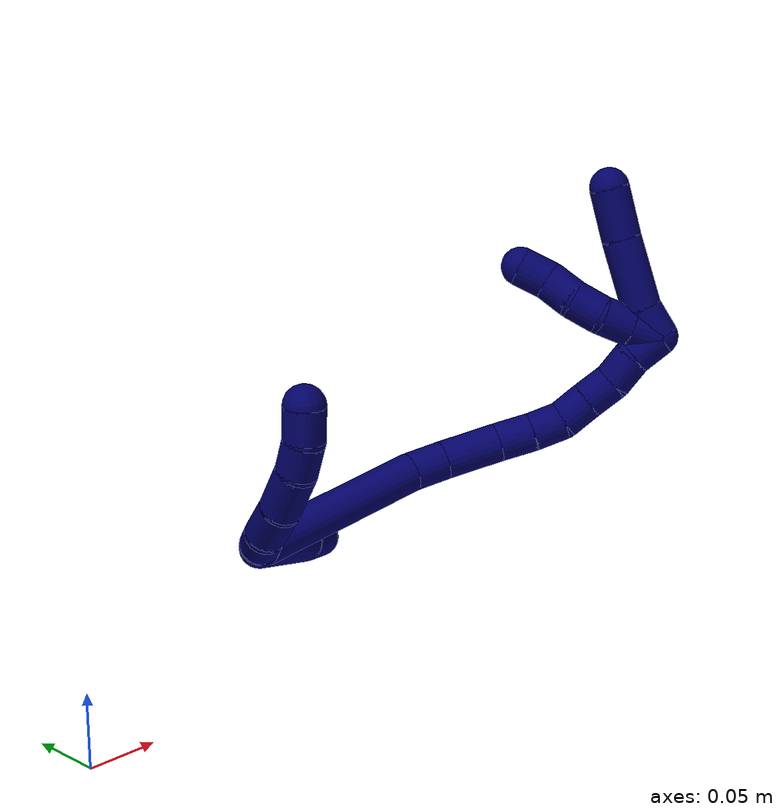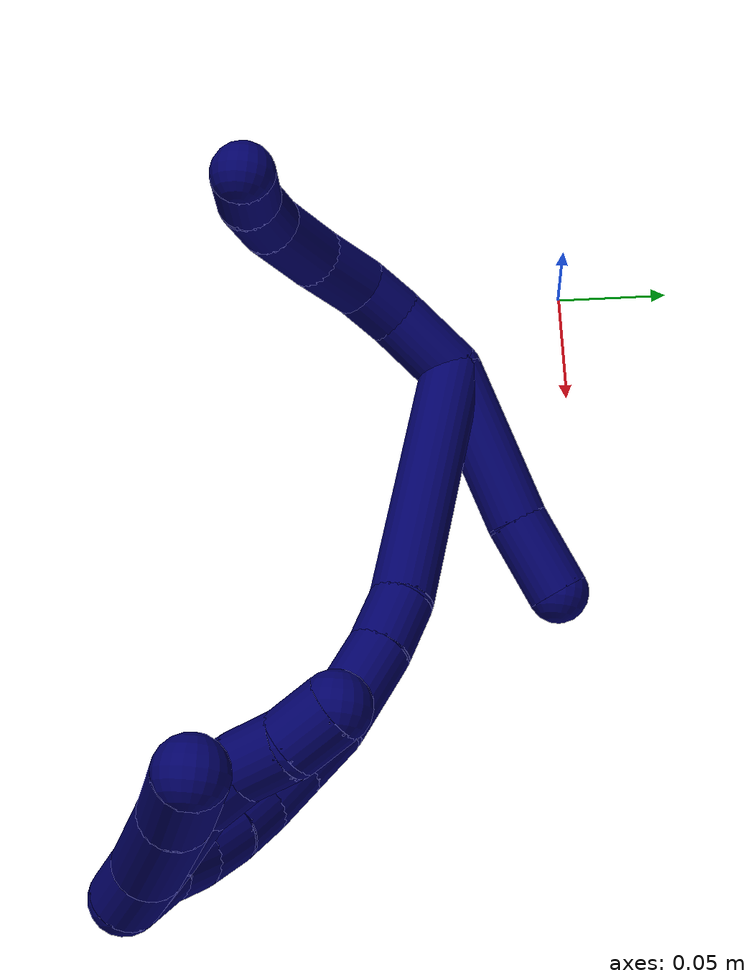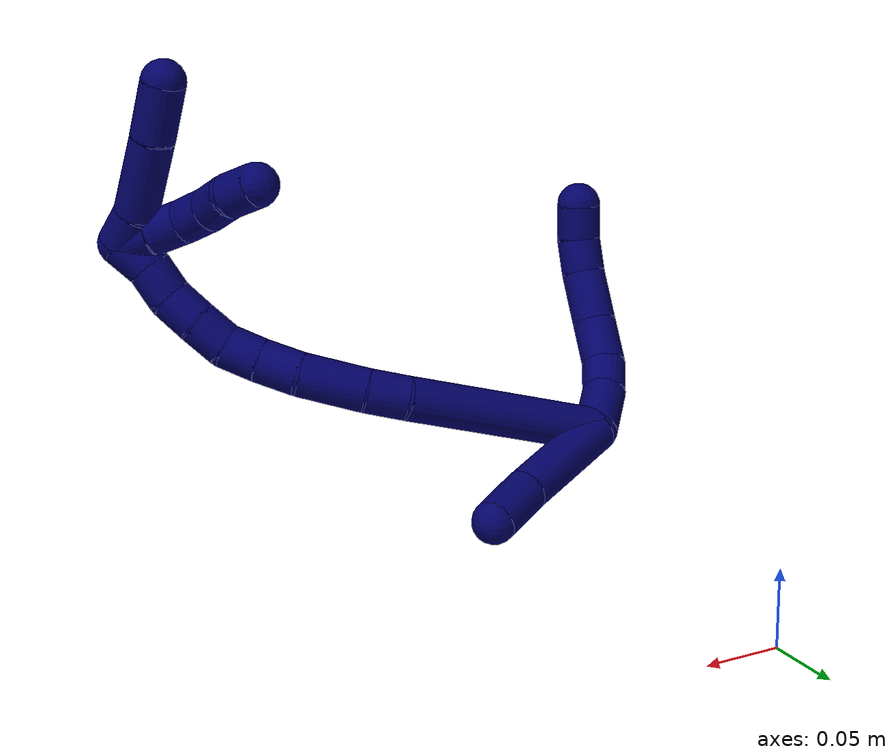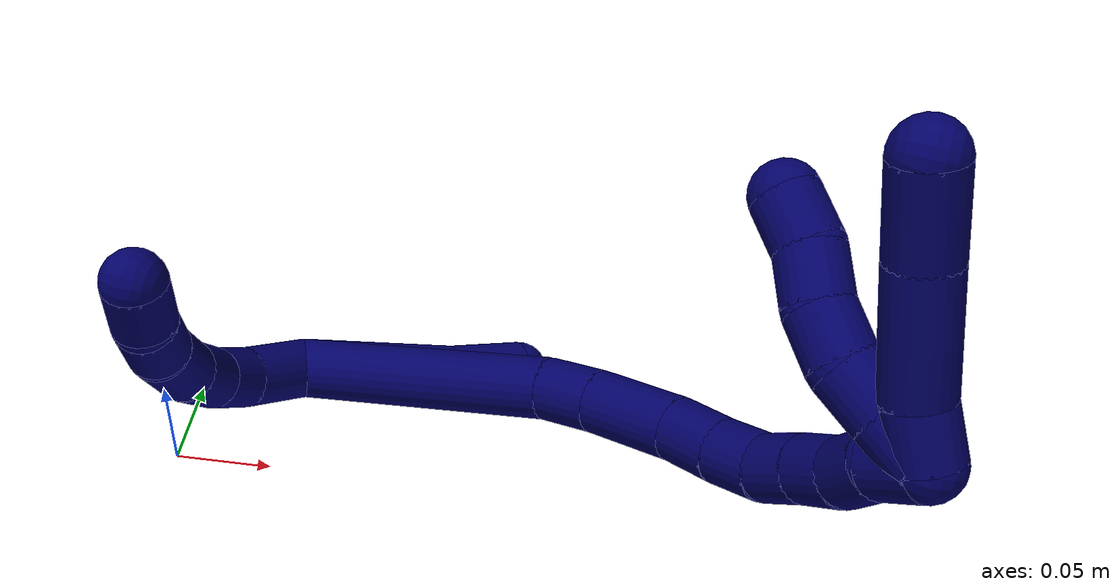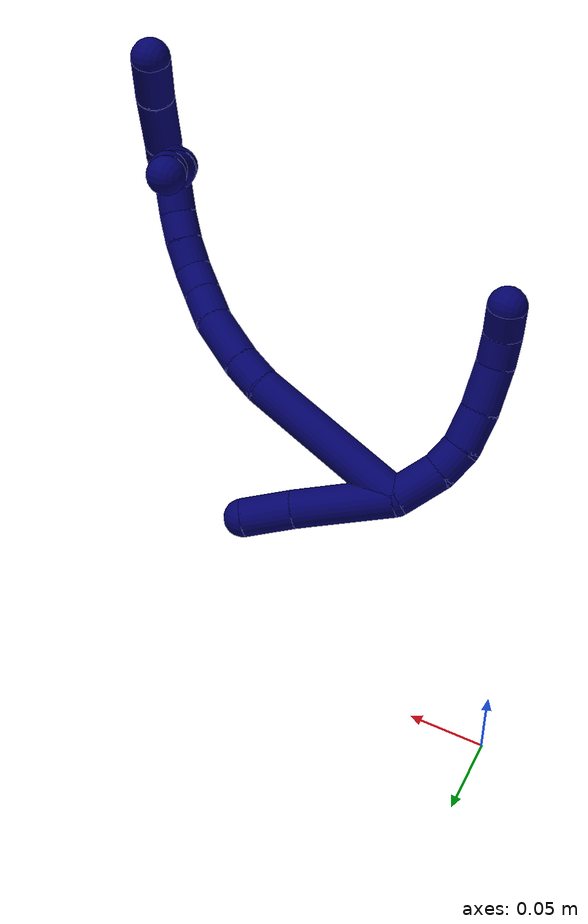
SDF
<sdf version="1.7">
 <world name="default">
  <model name="7">
   <static>0</static>
   <link name="7">
    <collision name="collision-cylinder-e_1_2_8">
     <pose>-0.013364 -0.001282 -0.00857 2.99313 -0.995551 -2.86958</pose>
     <geometry><cylinder><radius>0.0125</radius><length>0.031855</length></cylinder></geometry>
     <surface>
      <friction><ode><mu>1.16</mu><mu2>1.16</mu2><slip1>0</slip1><slip2>0</slip2></ode></friction>
      <contact><ode><kp>1e+06</kp><kd>1</kd><max_vel>0</max_vel><min_depth>0.001</min_depth></ode></contact>
     </surface>
    </collision>
    <visual name="visual-cylinder-e_1_2_8">
     <pose>-0.013364 -0.001282 -0.00857 2.99313 -0.995551 -2.86958</pose>
     <geometry><cylinder><radius>0.0125</radius><length>0.031855</length></cylinder></geometry>
     <material><ambient>0.003922 0 0.403922 1</ambient></material>
    </visual>
    <collision name="collision-cylinder-e_2_8_9">
     <pose>-0.036081 -0.001417 -0.020838 -2.84091 -1.17829 2.69579</pose>
     <geometry><cylinder><radius>0.0125</radius><length>0.020245</length></cylinder></geometry>
     <surface>
      <friction><ode><mu>1.16</mu><mu2>1.16</mu2><slip1>0</slip1><slip2>0</slip2></ode></friction>
      <contact><ode><kp>1e+06</kp><kd>1</kd><max_vel>0</max_vel><min_depth>0.001</min_depth></ode></contact>
     </surface>
    </collision>
    <visual name="visual-cylinder-e_2_8_9">
     <pose>-0.036081 -0.001417 -0.020838 -2.84091 -1.17829 2.69579</pose>
     <geometry><cylinder><radius>0.0125</radius><length>0.020245</length></cylinder></geometry>
     <material><ambient>0.003922 0 0.403922 1</ambient></material>
    </visual>
    <collision name="collision-cylinder-e_3_9_10">
     <pose>-0.057927 0.003833 -0.02611 -1.93708 -1.23258 1.6007</pose>
     <geometry><cylinder><radius>0.0125</radius><length>0.026487</length></cylinder></geometry>
     <surface>
      <friction><ode><mu>1.16</mu><mu2>1.16</mu2><slip1>0</slip1><slip2>0</slip2></ode></friction>
      <contact><ode><kp>1e+06</kp><kd>1</kd><max_vel>0</max_vel><min_depth>0.001</min_depth></ode></contact>
     </surface>
    </collision>
    <visual name="visual-cylinder-e_3_9_10">
     <pose>-0.057927 0.003833 -0.02611 -1.93708 -1.23258 1.6007</pose>
     <geometry><cylinder><radius>0.0125</radius><length>0.026487</length></cylinder></geometry>
     <material><ambient>0.003922 0 0.403922 1</ambient></material>
    </visual>
    <collision name="collision-cylinder-e_4_10_11">
     <pose>-0.083893 0.015025 -0.028551 -1.69255 -1.0833 1.19406</pose>
     <geometry><cylinder><radius>0.0125</radius><length>0.030498</length></cylinder></geometry>
     <surface>
      <friction><ode><mu>1.16</mu><mu2>1.16</mu2><slip1>0</slip1><slip2>0</slip2></ode></friction>
      <contact><ode><kp>1e+06</kp><kd>1</kd><max_vel>0</max_vel><min_depth>0.001</min_depth></ode></contact>
     </surface>
    </collision>
    <visual name="visual-cylinder-e_4_10_11">
     <pose>-0.083893 0.015025 -0.028551 -1.69255 -1.0833 1.19406</pose>
     <geometry><cylinder><radius>0.0125</radius><length>0.030498</length></cylinder></geometry>
     <material><ambient>0.003922 0 0.403922 1</ambient></material>
    </visual>
    <collision name="collision-cylinder-e_5_11_12">
     <pose>-0.105181 0.028759 -0.029921 -1.64629 -0.864899 0.923805</pose>
     <geometry><cylinder><radius>0.0125</radius><length>0.020541</length></cylinder></geometry>
     <surface>
      <friction><ode><mu>1.16</mu><mu2>1.16</mu2><slip1>0</slip1><slip2>0</slip2></ode></friction>
      <contact><ode><kp>1e+06</kp><kd>1</kd><max_vel>0</max_vel><min_depth>0.001</min_depth></ode></contact>
     </surface>
    </collision>
    <visual name="visual-cylinder-e_5_11_12">
     <pose>-0.105181 0.028759 -0.029921 -1.64629 -0.864899 0.923805</pose>
     <geometry><cylinder><radius>0.0125</radius><length>0.020541</length></cylinder></geometry>
     <material><ambient>0.003922 0 0.403922 1</ambient></material>
    </visual>
    <collision name="collision-cylinder-e_6_12_6">
     <pose>-0.118675 0.043805 -0.031399 -1.68634 -0.591112 0.658804</pose>
     <geometry><cylinder><radius>0.0125</radius><length>0.020374</length></cylinder></geometry>
     <surface>
      <friction><ode><mu>1.16</mu><mu2>1.16</mu2><slip1>0</slip1><slip2>0</slip2></ode></friction>
      <contact><ode><kp>1e+06</kp><kd>1</kd><max_vel>0</max_vel><min_depth>0.001</min_depth></ode></contact>
     </surface>
    </collision>
    <visual name="visual-cylinder-e_6_12_6">
     <pose>-0.118675 0.043805 -0.031399 -1.68634 -0.591112 0.658804</pose>
     <geometry><cylinder><radius>0.0125</radius><length>0.020374</length></cylinder></geometry>
     <material><ambient>0.003922 0 0.403922 1</ambient></material>
    </visual>
    <collision name="collision-cylinder-e_1_2_13">
     <pose>0.016785 0.00245 0.028683 -0.085215 0.527878 -0.023042</pose>
     <geometry><cylinder><radius>0.0125</radius><length>0.066647</length></cylinder></geometry>
     <surface>
      <friction><ode><mu>1.16</mu><mu2>1.16</mu2><slip1>0</slip1><slip2>0</slip2></ode></friction>
      <contact><ode><kp>1e+06</kp><kd>1</kd><max_vel>0</max_vel><min_depth>0.001</min_depth></ode></contact>
     </surface>
    </collision>
    <visual name="visual-cylinder-e_1_2_13">
     <pose>0.016785 0.00245 0.028683 -0.085215 0.527878 -0.023042</pose>
     <geometry><cylinder><radius>0.0125</radius><length>0.066647</length></cylinder></geometry>
     <material><ambient>0.003922 0 0.403922 1</ambient></material>
    </visual>
    <collision name="collision-cylinder-e_2_13_5">
     <pose>0.043029 0.007386 0.070874 -0.182001 0.603107 -0.056751</pose>
     <geometry><cylinder><radius>0.0125</radius><length>0.033353</length></cylinder></geometry>
     <surface>
      <friction><ode><mu>1.16</mu><mu2>1.16</mu2><slip1>0</slip1><slip2>0</slip2></ode></friction>
      <contact><ode><kp>1e+06</kp><kd>1</kd><max_vel>0</max_vel><min_depth>0.001</min_depth></ode></contact>
     </surface>
    </collision>
    <visual name="visual-cylinder-e_2_13_5">
     <pose>0.043029 0.007386 0.070874 -0.182001 0.603107 -0.056751</pose>
     <geometry><cylinder><radius>0.0125</radius><length>0.033353</length></cylinder></geometry>
     <material><ambient>0.003922 0 0.403922 1</ambient></material>
    </visual>
    <collision name="collision-cylinder-e_1_2_14">
     <pose>-0.01426 0.013689 0.053598 -0.25006 -0.252286 0.031875</pose>
     <geometry><cylinder><radius>0.0125</radius><length>0.114254</length></cylinder></geometry>
     <surface>
      <friction><ode><mu>1.16</mu><mu2>1.16</mu2><slip1>0</slip1><slip2>0</slip2></ode></friction>
      <contact><ode><kp>1e+06</kp><kd>1</kd><max_vel>0</max_vel><min_depth>0.001</min_depth></ode></contact>
     </surface>
    </collision>
    <visual name="visual-cylinder-e_1_2_14">
     <pose>-0.01426 0.013689 0.053598 -0.25006 -0.252286 0.031875</pose>
     <geometry><cylinder><radius>0.0125</radius><length>0.114254</length></cylinder></geometry>
     <material><ambient>0.003922 0 0.403922 1</ambient></material>
    </visual>
    <collision name="collision-cylinder-e_2_14_15">
     <pose>-0.033005 0.02873 0.117801 -0.126799 -0.397255 0.025555</pose>
     <geometry><cylinder><radius>0.0125</radius><length>0.023187</length></cylinder></geometry>
     <surface>
      <friction><ode><mu>1.16</mu><mu2>1.16</mu2><slip1>0</slip1><slip2>0</slip2></ode></friction>
      <contact><ode><kp>1e+06</kp><kd>1</kd><max_vel>0</max_vel><min_depth>0.001</min_depth></ode></contact>
     </surface>
    </collision>
    <visual name="visual-cylinder-e_2_14_15">
     <pose>-0.033005 0.02873 0.117801 -0.126799 -0.397255 0.025555</pose>
     <geometry><cylinder><radius>0.0125</radius><length>0.023187</length></cylinder></geometry>
     <material><ambient>0.003922 0 0.403922 1</ambient></material>
    </visual>
    <collision name="collision-cylinder-e_3_15_16">
     <pose>-0.046622 0.031459 0.14474 -0.084089 -0.508215 0.021852</pose>
     <geometry><cylinder><radius>0.0125</radius><length>0.037528</length></cylinder></geometry>
     <surface>
      <friction><ode><mu>1.16</mu><mu2>1.16</mu2><slip1>0</slip1><slip2>0</slip2></ode></friction>
      <contact><ode><kp>1e+06</kp><kd>1</kd><max_vel>0</max_vel><min_depth>0.001</min_depth></ode></contact>
     </surface>
    </collision>
    <visual name="visual-cylinder-e_3_15_16">
     <pose>-0.046622 0.031459 0.14474 -0.084089 -0.508215 0.021852</pose>
     <geometry><cylinder><radius>0.0125</radius><length>0.037528</length></cylinder></geometry>
     <material><ambient>0.003922 0 0.403922 1</ambient></material>
    </visual>
    <collision name="collision-cylinder-e_4_16_17">
     <pose>-0.063063 0.033075 0.170057 -0.02664 -0.682972 0.009468</pose>
     <geometry><cylinder><radius>0.0125</radius><length>0.023168</length></cylinder></geometry>
     <surface>
      <friction><ode><mu>1.16</mu><mu2>1.16</mu2><slip1>0</slip1><slip2>0</slip2></ode></friction>
      <contact><ode><kp>1e+06</kp><kd>1</kd><max_vel>0</max_vel><min_depth>0.001</min_depth></ode></contact>
     </surface>
    </collision>
    <visual name="visual-cylinder-e_4_16_17">
     <pose>-0.063063 0.033075 0.170057 -0.02664 -0.682972 0.009468</pose>
     <geometry><cylinder><radius>0.0125</radius><length>0.023168</length></cylinder></geometry>
     <material><ambient>0.003922 0 0.403922 1</ambient></material>
    </visual>
    <collision name="collision-cylinder-e_5_17_18">
     <pose>-0.077026 0.034304 0.186907 -0.125078 -0.698065 0.045572</pose>
     <geometry><cylinder><radius>0.0125</radius><length>0.020701</length></cylinder></geometry>
     <surface>
      <friction><ode><mu>1.16</mu><mu2>1.16</mu2><slip1>0</slip1><slip2>0</slip2></ode></friction>
      <contact><ode><kp>1e+06</kp><kd>1</kd><max_vel>0</max_vel><min_depth>0.001</min_depth></ode></contact>
     </surface>
    </collision>
    <visual name="visual-cylinder-e_5_17_18">
     <pose>-0.077026 0.034304 0.186907 -0.125078 -0.698065 0.045572</pose>
     <geometry><cylinder><radius>0.0125</radius><length>0.020701</length></cylinder></geometry>
     <material><ambient>0.003922 0 0.403922 1</ambient></material>
    </visual>
    <collision name="collision-cylinder-e_6_18_19">
     <pose>-0.09076 0.039128 0.200946 -0.556064 -0.772555 0.231136</pose>
     <geometry><cylinder><radius>0.0125</radius><length>0.020291</length></cylinder></geometry>
     <surface>
      <friction><ode><mu>1.16</mu><mu2>1.16</mu2><slip1>0</slip1><slip2>0</slip2></ode></friction>
      <contact><ode><kp>1e+06</kp><kd>1</kd><max_vel>0</max_vel><min_depth>0.001</min_depth></ode></contact>
     </surface>
    </collision>
    <visual name="visual-cylinder-e_6_18_19">
     <pose>-0.09076 0.039128 0.200946 -0.556064 -0.772555 0.231136</pose>
     <geometry><cylinder><radius>0.0125</radius><length>0.020291</length></cylinder></geometry>
     <material><ambient>0.003922 0 0.403922 1</ambient></material>
    </visual>
    <collision name="collision-cylinder-e_7_19_20">
     <pose>-0.105529 0.046258 0.212716 -0.531866 -0.869164 0.251535</pose>
     <geometry><cylinder><radius>0.0125</radius><length>0.02013</length></cylinder></geometry>
     <surface>
      <friction><ode><mu>1.16</mu><mu2>1.16</mu2><slip1>0</slip1><slip2>0</slip2></ode></friction>
      <contact><ode><kp>1e+06</kp><kd>1</kd><max_vel>0</max_vel><min_depth>0.001</min_depth></ode></contact>
     </surface>
    </collision>
    <visual name="visual-cylinder-e_7_19_20">
     <pose>-0.105529 0.046258 0.212716 -0.531866 -0.869164 0.251535</pose>
     <geometry><cylinder><radius>0.0125</radius><length>0.02013</length></cylinder></geometry>
     <material><ambient>0.003922 0 0.403922 1</ambient></material>
    </visual>
    <collision name="collision-cylinder-e_8_20_21">
     <pose>-0.121021 0.054788 0.222196 -0.932854 -0.875064 0.462594</pose>
     <geometry><cylinder><radius>0.0125</radius><length>0.020335</length></cylinder></geometry>
     <surface>
      <friction><ode><mu>1.16</mu><mu2>1.16</mu2><slip1>0</slip1><slip2>0</slip2></ode></friction>
      <contact><ode><kp>1e+06</kp><kd>1</kd><max_vel>0</max_vel><min_depth>0.001</min_depth></ode></contact>
     </surface>
    </collision>
    <visual name="visual-cylinder-e_8_20_21">
     <pose>-0.121021 0.054788 0.222196 -0.932854 -0.875064 0.462594</pose>
     <geometry><cylinder><radius>0.0125</radius><length>0.020335</length></cylinder></geometry>
     <material><ambient>0.003922 0 0.403922 1</ambient></material>
    </visual>
    <collision name="collision-cylinder-e_9_21_1">
     <pose>-0.136096 0.063676 0.232234 -0.535484 -0.793104 0.228739</pose>
     <geometry><cylinder><radius>0.0125</radius><length>0.020406</length></cylinder></geometry>
     <surface>
      <friction><ode><mu>1.16</mu><mu2>1.16</mu2><slip1>0</slip1><slip2>0</slip2></ode></friction>
      <contact><ode><kp>1e+06</kp><kd>1</kd><max_vel>0</max_vel><min_depth>0.001</min_depth></ode></contact>
     </surface>
    </collision>
    <visual name="visual-cylinder-e_9_21_1">
     <pose>-0.136096 0.063676 0.232234 -0.535484 -0.793104 0.228739</pose>
     <geometry><cylinder><radius>0.0125</radius><length>0.020406</length></cylinder></geometry>
     <material><ambient>0.003922 0 0.403922 1</ambient></material>
    </visual>
    <collision name="collision-cylinder-e_1_1_22">
     <pose>-0.140012 0.072471 0.230497 -2.5642 0.342006 -1.05336</pose>
     <geometry><cylinder><radius>0.0125</radius><length>0.02</length></cylinder></geometry>
     <surface>
      <friction><ode><mu>1.16</mu><mu2>1.16</mu2><slip1>0</slip1><slip2>0</slip2></ode></friction>
      <contact><ode><kp>1e+06</kp><kd>1</kd><max_vel>0</max_vel><min_depth>0.001</min_depth></ode></contact>
     </surface>
    </collision>
    <visual name="visual-cylinder-e_1_1_22">
     <pose>-0.140012 0.072471 0.230497 -2.5642 0.342006 -1.05336</pose>
     <geometry><cylinder><radius>0.0125</radius><length>0.02</length></cylinder></geometry>
     <material><ambient>0.003922 0 0.403922 1</ambient></material>
    </visual>
    <collision name="collision-cylinder-e_2_22_23">
     <pose>-0.134015 0.083006 0.214607 -2.54822 0.267439 -0.829068</pose>
     <geometry><cylinder><radius>0.0125</radius><length>0.02</length></cylinder></geometry>
     <surface>
      <friction><ode><mu>1.16</mu><mu2>1.16</mu2><slip1>0</slip1><slip2>0</slip2></ode></friction>
      <contact><ode><kp>1e+06</kp><kd>1</kd><max_vel>0</max_vel><min_depth>0.001</min_depth></ode></contact>
     </surface>
    </collision>
    <visual name="visual-cylinder-e_2_22_23">
     <pose>-0.134015 0.083006 0.214607 -2.54822 0.267439 -0.829068</pose>
     <geometry><cylinder><radius>0.0125</radius><length>0.02</length></cylinder></geometry>
     <material><ambient>0.003922 0 0.403922 1</ambient></material>
    </visual>
    <collision name="collision-cylinder-e_3_23_24">
     <pose>-0.127417 0.095543 0.20084 -2.25033 0.40673 -0.815066</pose>
     <geometry><cylinder><radius>0.0125</radius><length>0.02</length></cylinder></geometry>
     <surface>
      <friction><ode><mu>1.16</mu><mu2>1.16</mu2><slip1>0</slip1><slip2>0</slip2></ode></friction>
      <contact><ode><kp>1e+06</kp><kd>1</kd><max_vel>0</max_vel><min_depth>0.001</min_depth></ode></contact>
     </surface>
    </collision>
    <visual name="visual-cylinder-e_3_23_24">
     <pose>-0.127417 0.095543 0.20084 -2.25033 0.40673 -0.815066</pose>
     <geometry><cylinder><radius>0.0125</radius><length>0.02</length></cylinder></geometry>
     <material><ambient>0.003922 0 0.403922 1</ambient></material>
    </visual>
    <collision name="collision-cylinder-e_4_24_25">
     <pose>-0.119139 0.110937 0.191426 -1.98653 0.446891 -0.671061</pose>
     <geometry><cylinder><radius>0.0125</radius><length>0.02</length></cylinder></geometry>
     <surface>
      <friction><ode><mu>1.16</mu><mu2>1.16</mu2><slip1>0</slip1><slip2>0</slip2></ode></friction>
      <contact><ode><kp>1e+06</kp><kd>1</kd><max_vel>0</max_vel><min_depth>0.001</min_depth></ode></contact>
     </surface>
    </collision>
    <visual name="visual-cylinder-e_4_24_25">
     <pose>-0.119139 0.110937 0.191426 -1.98653 0.446891 -0.671061</pose>
     <geometry><cylinder><radius>0.0125</radius><length>0.02</length></cylinder></geometry>
     <material><ambient>0.003922 0 0.403922 1</ambient></material>
    </visual>
    <collision name="collision-cylinder-e_5_25_4">
     <pose>-0.110525 0.126028 0.181888 -2.28214 0.44367 -0.914691</pose>
     <geometry><cylinder><radius>0.0125</radius><length>0.02</length></cylinder></geometry>
     <surface>
      <friction><ode><mu>1.16</mu><mu2>1.16</mu2><slip1>0</slip1><slip2>0</slip2></ode></friction>
      <contact><ode><kp>1e+06</kp><kd>1</kd><max_vel>0</max_vel><min_depth>0.001</min_depth></ode></contact>
     </surface>
    </collision>
    <visual name="visual-cylinder-e_5_25_4">
     <pose>-0.110525 0.126028 0.181888 -2.28214 0.44367 -0.914691</pose>
     <geometry><cylinder><radius>0.0125</radius><length>0.02</length></cylinder></geometry>
     <material><ambient>0.003922 0 0.403922 1</ambient></material>
    </visual>
    <collision name="collision-cylinder-e_1_1_26">
     <pose>-0.144094 0.076948 0.23393 -2.00497 -0.068621 0.107396</pose>
     <geometry><cylinder><radius>0.0125</radius><length>0.021257</length></cylinder></geometry>
     <surface>
      <friction><ode><mu>1.16</mu><mu2>1.16</mu2><slip1>0</slip1><slip2>0</slip2></ode></friction>
      <contact><ode><kp>1e+06</kp><kd>1</kd><max_vel>0</max_vel><min_depth>0.001</min_depth></ode></contact>
     </surface>
    </collision>
    <visual name="visual-cylinder-e_1_1_26">
     <pose>-0.144094 0.076948 0.23393 -2.00497 -0.068621 0.107396</pose>
     <geometry><cylinder><radius>0.0125</radius><length>0.021257</length></cylinder></geometry>
     <material><ambient>0.003922 0 0.403922 1</ambient></material>
    </visual>
    <collision name="collision-cylinder-e_2_26_27">
     <pose>-0.150509 0.108083 0.223804 -1.82829 -0.250219 0.323496</pose>
     <geometry><cylinder><radius>0.0125</radius><length>0.045928</length></cylinder></geometry>
     <surface>
      <friction><ode><mu>1.16</mu><mu2>1.16</mu2><slip1>0</slip1><slip2>0</slip2></ode></friction>
      <contact><ode><kp>1e+06</kp><kd>1</kd><max_vel>0</max_vel><min_depth>0.001</min_depth></ode></contact>
     </surface>
    </collision>
    <visual name="visual-cylinder-e_2_26_27">
     <pose>-0.150509 0.108083 0.223804 -1.82829 -0.250219 0.323496</pose>
     <geometry><cylinder><radius>0.0125</radius><length>0.045928</length></cylinder></geometry>
     <material><ambient>0.003922 0 0.403922 1</ambient></material>
    </visual>
    <collision name="collision-cylinder-e_3_27_3">
     <pose>-0.161185 0.144716 0.214166 -1.82773 -0.308994 0.398526</pose>
     <geometry><cylinder><radius>0.0125</radius><length>0.032816</length></cylinder></geometry>
     <surface>
      <friction><ode><mu>1.16</mu><mu2>1.16</mu2><slip1>0</slip1><slip2>0</slip2></ode></friction>
      <contact><ode><kp>1e+06</kp><kd>1</kd><max_vel>0</max_vel><min_depth>0.001</min_depth></ode></contact>
     </surface>
    </collision>
    <visual name="visual-cylinder-e_3_27_3">
     <pose>-0.161185 0.144716 0.214166 -1.82773 -0.308994 0.398526</pose>
     <geometry><cylinder><radius>0.0125</radius><length>0.032816</length></cylinder></geometry>
     <material><ambient>0.003922 0 0.403922 1</ambient></material>
    </visual>
    <collision name="collision-sphere-3">
     <pose>-0.166175 0.159833 0.210194 0 -0 0</pose>
     <geometry><sphere><radius>0.0125</radius></sphere></geometry>
     <surface>
      <friction><ode><mu>1.16</mu><mu2>1.16</mu2><slip1>0</slip1><slip2>0</slip2></ode></friction>
      <contact><ode><kp>1e+06</kp><kd>1</kd><max_vel>0</max_vel><min_depth>0.001</min_depth></ode></contact>
     </surface>
    </collision>
    <visual name="visual-sphere-3">
     <pose>-0.166175 0.159833 0.210194 0 -0 0</pose>
     <geometry><sphere><radius>0.0125</radius></sphere></geometry>
     <material><ambient>0.003922 0 0.403922 1</ambient></material>
    </visual>
    <collision name="collision-sphere-27">
     <pose>-0.156196 0.129598 0.218138 0 -0 0</pose>
     <geometry><sphere><radius>0.0125</radius></sphere></geometry>
     <surface>
      <friction><ode><mu>1.16</mu><mu2>1.16</mu2><slip1>0</slip1><slip2>0</slip2></ode></friction>
      <contact><ode><kp>1e+06</kp><kd>1</kd><max_vel>0</max_vel><min_depth>0.001</min_depth></ode></contact>
     </surface>
    </collision>
    <visual name="visual-sphere-27">
     <pose>-0.156196 0.129598 0.218138 0 -0 0</pose>
     <geometry><sphere><radius>0.0125</radius></sphere></geometry>
     <material><ambient>0.003922 0 0.403922 1</ambient></material>
    </visual>
    <collision name="collision-sphere-26">
     <pose>-0.144823 0.086568 0.22947 0 -0 0</pose>
     <geometry><sphere><radius>0.0125</radius></sphere></geometry>
     <surface>
      <friction><ode><mu>1.16</mu><mu2>1.16</mu2><slip1>0</slip1><slip2>0</slip2></ode></friction>
      <contact><ode><kp>1e+06</kp><kd>1</kd><max_vel>0</max_vel><min_depth>0.001</min_depth></ode></contact>
     </surface>
    </collision>
    <visual name="visual-sphere-26">
     <pose>-0.144823 0.086568 0.22947 0 -0 0</pose>
     <geometry><sphere><radius>0.0125</radius></sphere></geometry>
     <material><ambient>0.003922 0 0.403922 1</ambient></material>
    </visual>
    <collision name="collision-sphere-4">
     <pose>-0.106232 0.13287 0.175992 0 -0 0</pose>
     <geometry><sphere><radius>0.0125</radius></sphere></geometry>
     <surface>
      <friction><ode><mu>1.16</mu><mu2>1.16</mu2><slip1>0</slip1><slip2>0</slip2></ode></friction>
      <contact><ode><kp>1e+06</kp><kd>1</kd><max_vel>0</max_vel><min_depth>0.001</min_depth></ode></contact>
     </surface>
    </collision>
    <visual name="visual-sphere-4">
     <pose>-0.106232 0.13287 0.175992 0 -0 0</pose>
     <geometry><sphere><radius>0.0125</radius></sphere></geometry>
     <material><ambient>0.003922 0 0.403922 1</ambient></material>
    </visual>
    <collision name="collision-sphere-25">
     <pose>-0.114817 0.119187 0.187784 0 -0 0</pose>
     <geometry><sphere><radius>0.0125</radius></sphere></geometry>
     <surface>
      <friction><ode><mu>1.16</mu><mu2>1.16</mu2><slip1>0</slip1><slip2>0</slip2></ode></friction>
      <contact><ode><kp>1e+06</kp><kd>1</kd><max_vel>0</max_vel><min_depth>0.001</min_depth></ode></contact>
     </surface>
    </collision>
    <visual name="visual-sphere-25">
     <pose>-0.114817 0.119187 0.187784 0 -0 0</pose>
     <geometry><sphere><radius>0.0125</radius></sphere></geometry>
     <material><ambient>0.003922 0 0.403922 1</ambient></material>
    </visual>
    <collision name="collision-sphere-24">
     <pose>-0.123461 0.102687 0.195068 0 -0 0</pose>
     <geometry><sphere><radius>0.0125</radius></sphere></geometry>
     <surface>
      <friction><ode><mu>1.16</mu><mu2>1.16</mu2><slip1>0</slip1><slip2>0</slip2></ode></friction>
      <contact><ode><kp>1e+06</kp><kd>1</kd><max_vel>0</max_vel><min_depth>0.001</min_depth></ode></contact>
     </surface>
    </collision>
    <visual name="visual-sphere-24">
     <pose>-0.123461 0.102687 0.195068 0 -0 0</pose>
     <geometry><sphere><radius>0.0125</radius></sphere></geometry>
     <material><ambient>0.003922 0 0.403922 1</ambient></material>
    </visual>
    <collision name="collision-sphere-23">
     <pose>-0.131373 0.088399 0.206612 0 -0 0</pose>
     <geometry><sphere><radius>0.0125</radius></sphere></geometry>
     <surface>
      <friction><ode><mu>1.16</mu><mu2>1.16</mu2><slip1>0</slip1><slip2>0</slip2></ode></friction>
      <contact><ode><kp>1e+06</kp><kd>1</kd><max_vel>0</max_vel><min_depth>0.001</min_depth></ode></contact>
     </surface>
    </collision>
    <visual name="visual-sphere-23">
     <pose>-0.131373 0.088399 0.206612 0 -0 0</pose>
     <geometry><sphere><radius>0.0125</radius></sphere></geometry>
     <material><ambient>0.003922 0 0.403922 1</ambient></material>
    </visual>
    <collision name="collision-sphere-22">
     <pose>-0.136658 0.077613 0.222603 0 -0 0</pose>
     <geometry><sphere><radius>0.0125</radius></sphere></geometry>
     <surface>
      <friction><ode><mu>1.16</mu><mu2>1.16</mu2><slip1>0</slip1><slip2>0</slip2></ode></friction>
      <contact><ode><kp>1e+06</kp><kd>1</kd><max_vel>0</max_vel><min_depth>0.001</min_depth></ode></contact>
     </surface>
    </collision>
    <visual name="visual-sphere-22">
     <pose>-0.136658 0.077613 0.222603 0 -0 0</pose>
     <geometry><sphere><radius>0.0125</radius></sphere></geometry>
     <material><ambient>0.003922 0 0.403922 1</ambient></material>
    </visual>
    <collision name="collision-sphere-1">
     <pose>-0.143366 0.067329 0.238391 0 -0 0</pose>
     <geometry><sphere><radius>0.0125</radius></sphere></geometry>
     <surface>
      <friction><ode><mu>1.16</mu><mu2>1.16</mu2><slip1>0</slip1><slip2>0</slip2></ode></friction>
      <contact><ode><kp>1e+06</kp><kd>1</kd><max_vel>0</max_vel><min_depth>0.001</min_depth></ode></contact>
     </surface>
    </collision>
    <visual name="visual-sphere-1">
     <pose>-0.143366 0.067329 0.238391 0 -0 0</pose>
     <geometry><sphere><radius>0.0125</radius></sphere></geometry>
     <material><ambient>0.003922 0 0.403922 1</ambient></material>
    </visual>
    <collision name="collision-sphere-21">
     <pose>-0.128826 0.060023 0.226077 0 -0 0</pose>
     <geometry><sphere><radius>0.0125</radius></sphere></geometry>
     <surface>
      <friction><ode><mu>1.16</mu><mu2>1.16</mu2><slip1>0</slip1><slip2>0</slip2></ode></friction>
      <contact><ode><kp>1e+06</kp><kd>1</kd><max_vel>0</max_vel><min_depth>0.001</min_depth></ode></contact>
     </surface>
    </collision>
    <visual name="visual-sphere-21">
     <pose>-0.128826 0.060023 0.226077 0 -0 0</pose>
     <geometry><sphere><radius>0.0125</radius></sphere></geometry>
     <material><ambient>0.003922 0 0.403922 1</ambient></material>
    </visual>
    <collision name="collision-sphere-12">
     <pose>-0.112997 0.035403 -0.030424 0 -0 0</pose>
     <geometry><sphere><radius>0.0125</radius></sphere></geometry>
     <surface>
      <friction><ode><mu>1.16</mu><mu2>1.16</mu2><slip1>0</slip1><slip2>0</slip2></ode></friction>
      <contact><ode><kp>1e+06</kp><kd>1</kd><max_vel>0</max_vel><min_depth>0.001</min_depth></ode></contact>
     </surface>
    </collision>
    <visual name="visual-sphere-12">
     <pose>-0.112997 0.035403 -0.030424 0 -0 0</pose>
     <geometry><sphere><radius>0.0125</radius></sphere></geometry>
     <material><ambient>0.003922 0 0.403922 1</ambient></material>
    </visual>
    <collision name="collision-sphere-11">
     <pose>-0.097365 0.022116 -0.029419 0 -0 0</pose>
     <geometry><sphere><radius>0.0125</radius></sphere></geometry>
     <surface>
      <friction><ode><mu>1.16</mu><mu2>1.16</mu2><slip1>0</slip1><slip2>0</slip2></ode></friction>
      <contact><ode><kp>1e+06</kp><kd>1</kd><max_vel>0</max_vel><min_depth>0.001</min_depth></ode></contact>
     </surface>
    </collision>
    <visual name="visual-sphere-11">
     <pose>-0.097365 0.022116 -0.029419 0 -0 0</pose>
     <geometry><sphere><radius>0.0125</radius></sphere></geometry>
     <material><ambient>0.003922 0 0.403922 1</ambient></material>
    </visual>
    <collision name="collision-sphere-10">
     <pose>-0.07042 0.007935 -0.027684 0 -0 0</pose>
     <geometry><sphere><radius>0.0125</radius></sphere></geometry>
     <surface>
      <friction><ode><mu>1.16</mu><mu2>1.16</mu2><slip1>0</slip1><slip2>0</slip2></ode></friction>
      <contact><ode><kp>1e+06</kp><kd>1</kd><max_vel>0</max_vel><min_depth>0.001</min_depth></ode></contact>
     </surface>
    </collision>
    <visual name="visual-sphere-10">
     <pose>-0.07042 0.007935 -0.027684 0 -0 0</pose>
     <geometry><sphere><radius>0.0125</radius></sphere></geometry>
     <material><ambient>0.003922 0 0.403922 1</ambient></material>
    </visual>
    <collision name="collision-sphere-9">
     <pose>-0.045433 -0.00027 -0.024536 0 -0 0</pose>
     <geometry><sphere><radius>0.0125</radius></sphere></geometry>
     <surface>
      <friction><ode><mu>1.16</mu><mu2>1.16</mu2><slip1>0</slip1><slip2>0</slip2></ode></friction>
      <contact><ode><kp>1e+06</kp><kd>1</kd><max_vel>0</max_vel><min_depth>0.001</min_depth></ode></contact>
     </surface>
    </collision>
    <visual name="visual-sphere-9">
     <pose>-0.045433 -0.00027 -0.024536 0 -0 0</pose>
     <geometry><sphere><radius>0.0125</radius></sphere></geometry>
     <material><ambient>0.003922 0 0.403922 1</ambient></material>
    </visual>
    <collision name="collision-sphere-2">
     <geometry><sphere><radius>0.0125</radius></sphere></geometry>
     <surface>
      <friction><ode><mu>1.16</mu><mu2>1.16</mu2><slip1>0</slip1><slip2>0</slip2></ode></friction>
      <contact><ode><kp>1e+06</kp><kd>1</kd><max_vel>0</max_vel><min_depth>0.001</min_depth></ode></contact>
     </surface>
    </collision>
    <visual name="visual-sphere-2">
     <geometry><sphere><radius>0.0125</radius></sphere></geometry>
     <material><ambient>0.003922 0 0.403922 1</ambient></material>
    </visual>
    <collision name="collision-sphere-19">
     <pose>-0.097841 0.042963 0.207116 0 -0 0</pose>
     <geometry><sphere><radius>0.0125</radius></sphere></geometry>
     <surface>
      <friction><ode><mu>1.16</mu><mu2>1.16</mu2><slip1>0</slip1><slip2>0</slip2></ode></friction>
      <contact><ode><kp>1e+06</kp><kd>1</kd><max_vel>0</max_vel><min_depth>0.001</min_depth></ode></contact>
     </surface>
    </collision>
    <visual name="visual-sphere-19">
     <pose>-0.097841 0.042963 0.207116 0 -0 0</pose>
     <geometry><sphere><radius>0.0125</radius></sphere></geometry>
     <material><ambient>0.003922 0 0.403922 1</ambient></material>
    </visual>
    <collision name="collision-sphere-8">
     <pose>-0.026728 -0.002563 -0.01714 0 -0 0</pose>
     <geometry><sphere><radius>0.0125</radius></sphere></geometry>
     <surface>
      <friction><ode><mu>1.16</mu><mu2>1.16</mu2><slip1>0</slip1><slip2>0</slip2></ode></friction>
      <contact><ode><kp>1e+06</kp><kd>1</kd><max_vel>0</max_vel><min_depth>0.001</min_depth></ode></contact>
     </surface>
    </collision>
    <visual name="visual-sphere-8">
     <pose>-0.026728 -0.002563 -0.01714 0 -0 0</pose>
     <geometry><sphere><radius>0.0125</radius></sphere></geometry>
     <material><ambient>0.003922 0 0.403922 1</ambient></material>
    </visual>
    <collision name="collision-sphere-6">
     <pose>-0.124352 0.052207 -0.032374 0 -0 0</pose>
     <geometry><sphere><radius>0.0125</radius></sphere></geometry>
     <surface>
      <friction><ode><mu>1.16</mu><mu2>1.16</mu2><slip1>0</slip1><slip2>0</slip2></ode></friction>
      <contact><ode><kp>1e+06</kp><kd>1</kd><max_vel>0</max_vel><min_depth>0.001</min_depth></ode></contact>
     </surface>
    </collision>
    <visual name="visual-sphere-6">
     <pose>-0.124352 0.052207 -0.032374 0 -0 0</pose>
     <geometry><sphere><radius>0.0125</radius></sphere></geometry>
     <material><ambient>0.003922 0 0.403922 1</ambient></material>
    </visual>
    <collision name="collision-sphere-13">
     <pose>0.03357 0.0049 0.057366 0 -0 0</pose>
     <geometry><sphere><radius>0.0125</radius></sphere></geometry>
     <surface>
      <friction><ode><mu>1.16</mu><mu2>1.16</mu2><slip1>0</slip1><slip2>0</slip2></ode></friction>
      <contact><ode><kp>1e+06</kp><kd>1</kd><max_vel>0</max_vel><min_depth>0.001</min_depth></ode></contact>
     </surface>
    </collision>
    <visual name="visual-sphere-13">
     <pose>0.03357 0.0049 0.057366 0 -0 0</pose>
     <geometry><sphere><radius>0.0125</radius></sphere></geometry>
     <material><ambient>0.003922 0 0.403922 1</ambient></material>
    </visual>
    <collision name="collision-sphere-5">
     <pose>0.052488 0.009872 0.084381 0 -0 0</pose>
     <geometry><sphere><radius>0.0125</radius></sphere></geometry>
     <surface>
      <friction><ode><mu>1.16</mu><mu2>1.16</mu2><slip1>0</slip1><slip2>0</slip2></ode></friction>
      <contact><ode><kp>1e+06</kp><kd>1</kd><max_vel>0</max_vel><min_depth>0.001</min_depth></ode></contact>
     </surface>
    </collision>
    <visual name="visual-sphere-5">
     <pose>0.052488 0.009872 0.084381 0 -0 0</pose>
     <geometry><sphere><radius>0.0125</radius></sphere></geometry>
     <material><ambient>0.003922 0 0.403922 1</ambient></material>
    </visual>
    <collision name="collision-sphere-14">
     <pose>-0.02852 0.027378 0.107196 0 -0 0</pose>
     <geometry><sphere><radius>0.0125</radius></sphere></geometry>
     <surface>
      <friction><ode><mu>1.16</mu><mu2>1.16</mu2><slip1>0</slip1><slip2>0</slip2></ode></friction>
      <contact><ode><kp>1e+06</kp><kd>1</kd><max_vel>0</max_vel><min_depth>0.001</min_depth></ode></contact>
     </surface>
    </collision>
    <visual name="visual-sphere-14">
     <pose>-0.02852 0.027378 0.107196 0 -0 0</pose>
     <geometry><sphere><radius>0.0125</radius></sphere></geometry>
     <material><ambient>0.003922 0 0.403922 1</ambient></material>
    </visual>
    <collision name="collision-sphere-15">
     <pose>-0.037491 0.030082 0.128406 0 -0 0</pose>
     <geometry><sphere><radius>0.0125</radius></sphere></geometry>
     <surface>
      <friction><ode><mu>1.16</mu><mu2>1.16</mu2><slip1>0</slip1><slip2>0</slip2></ode></friction>
      <contact><ode><kp>1e+06</kp><kd>1</kd><max_vel>0</max_vel><min_depth>0.001</min_depth></ode></contact>
     </surface>
    </collision>
    <visual name="visual-sphere-15">
     <pose>-0.037491 0.030082 0.128406 0 -0 0</pose>
     <geometry><sphere><radius>0.0125</radius></sphere></geometry>
     <material><ambient>0.003922 0 0.403922 1</ambient></material>
    </visual>
    <collision name="collision-sphere-16">
     <pose>-0.055752 0.032836 0.161075 0 -0 0</pose>
     <geometry><sphere><radius>0.0125</radius></sphere></geometry>
     <surface>
      <friction><ode><mu>1.16</mu><mu2>1.16</mu2><slip1>0</slip1><slip2>0</slip2></ode></friction>
      <contact><ode><kp>1e+06</kp><kd>1</kd><max_vel>0</max_vel><min_depth>0.001</min_depth></ode></contact>
     </surface>
    </collision>
    <visual name="visual-sphere-16">
     <pose>-0.055752 0.032836 0.161075 0 -0 0</pose>
     <geometry><sphere><radius>0.0125</radius></sphere></geometry>
     <material><ambient>0.003922 0 0.403922 1</ambient></material>
    </visual>
    <collision name="collision-sphere-17">
     <pose>-0.070374 0.033315 0.17904 0 -0 0</pose>
     <geometry><sphere><radius>0.0125</radius></sphere></geometry>
     <surface>
      <friction><ode><mu>1.16</mu><mu2>1.16</mu2><slip1>0</slip1><slip2>0</slip2></ode></friction>
      <contact><ode><kp>1e+06</kp><kd>1</kd><max_vel>0</max_vel><min_depth>0.001</min_depth></ode></contact>
     </surface>
    </collision>
    <visual name="visual-sphere-17">
     <pose>-0.070374 0.033315 0.17904 0 -0 0</pose>
     <geometry><sphere><radius>0.0125</radius></sphere></geometry>
     <material><ambient>0.003922 0 0.403922 1</ambient></material>
    </visual>
    <collision name="collision-sphere-18">
     <pose>-0.083679 0.035293 0.194775 0 -0 0</pose>
     <geometry><sphere><radius>0.0125</radius></sphere></geometry>
     <surface>
      <friction><ode><mu>1.16</mu><mu2>1.16</mu2><slip1>0</slip1><slip2>0</slip2></ode></friction>
      <contact><ode><kp>1e+06</kp><kd>1</kd><max_vel>0</max_vel><min_depth>0.001</min_depth></ode></contact>
     </surface>
    </collision>
    <visual name="visual-sphere-18">
     <pose>-0.083679 0.035293 0.194775 0 -0 0</pose>
     <geometry><sphere><radius>0.0125</radius></sphere></geometry>
     <material><ambient>0.003922 0 0.403922 1</ambient></material>
    </visual>
    <collision name="collision-sphere-20">
     <pose>-0.113217 0.049553 0.218315 0 -0 0</pose>
     <geometry><sphere><radius>0.0125</radius></sphere></geometry>
     <surface>
      <friction><ode><mu>1.16</mu><mu2>1.16</mu2><slip1>0</slip1><slip2>0</slip2></ode></friction>
      <contact><ode><kp>1e+06</kp><kd>1</kd><max_vel>0</max_vel><min_depth>0.001</min_depth></ode></contact>
     </surface>
    </collision>
    <visual name="visual-sphere-20">
     <pose>-0.113217 0.049553 0.218315 0 -0 0</pose>
     <geometry><sphere><radius>0.0125</radius></sphere></geometry>
     <material><ambient>0.003922 0 0.403922 1</ambient></material>
    </visual>
    <inertial>
     <pose>-0.068753 0.043356 0.110855 0 -0 0</pose>
     <mass>0.75</mass>
     <inertia><ixx>0.000176</ixx><ixy>0</ixy><ixz>0</ixz><iyy>0.000211</iyy><iyz>0</iyz><izz>-5e-06</izz></inertia>
    </inertial>
   </link>
   <pose>0.09237 -0.056291 0.134259 1.66305 0.538364 1.47896</pose>
  </model>
 </world>
</sdf>
